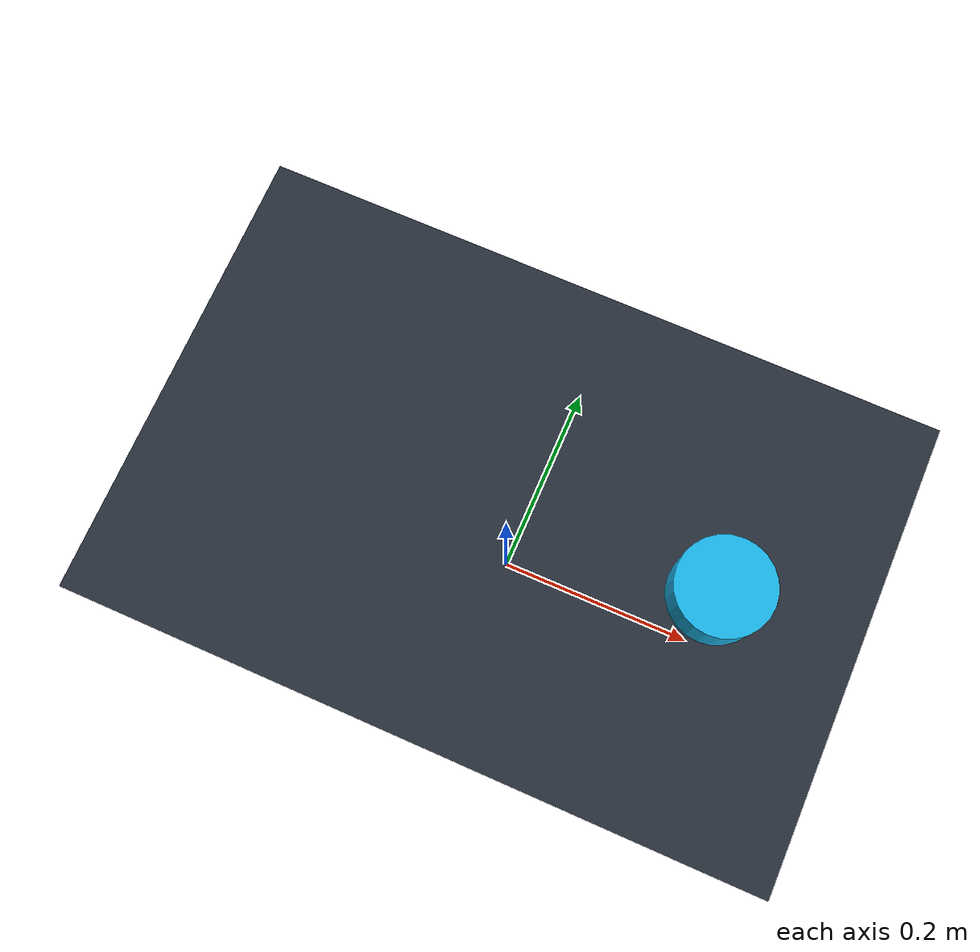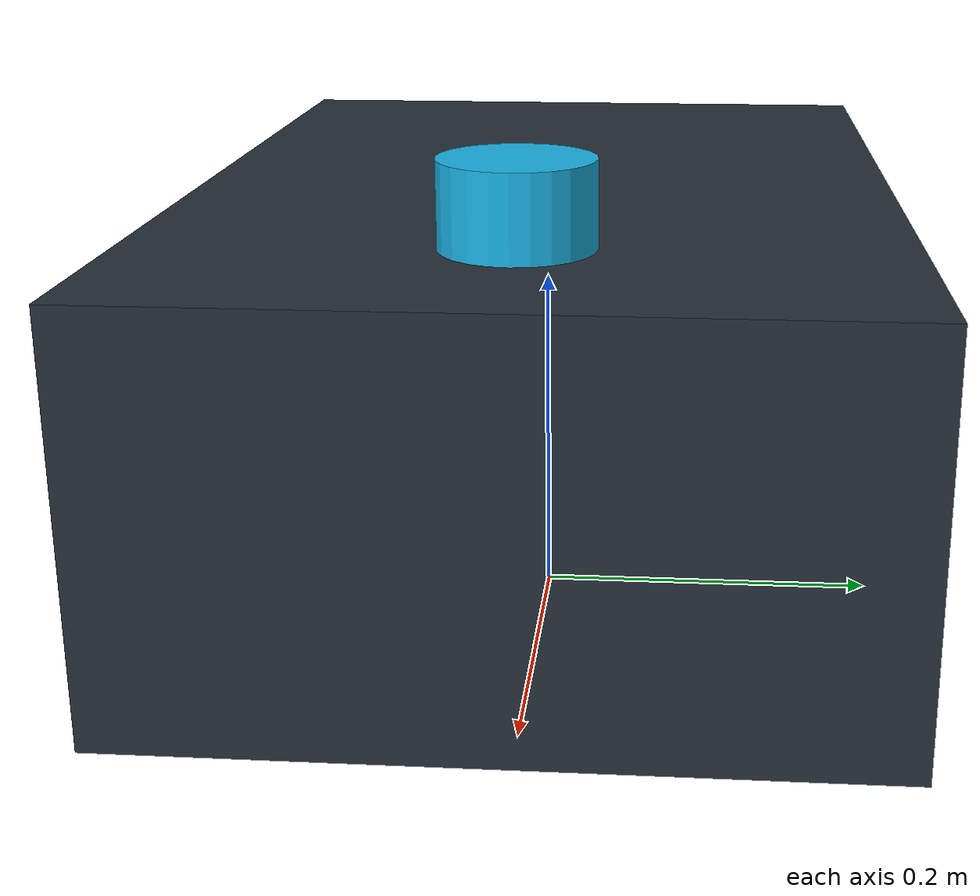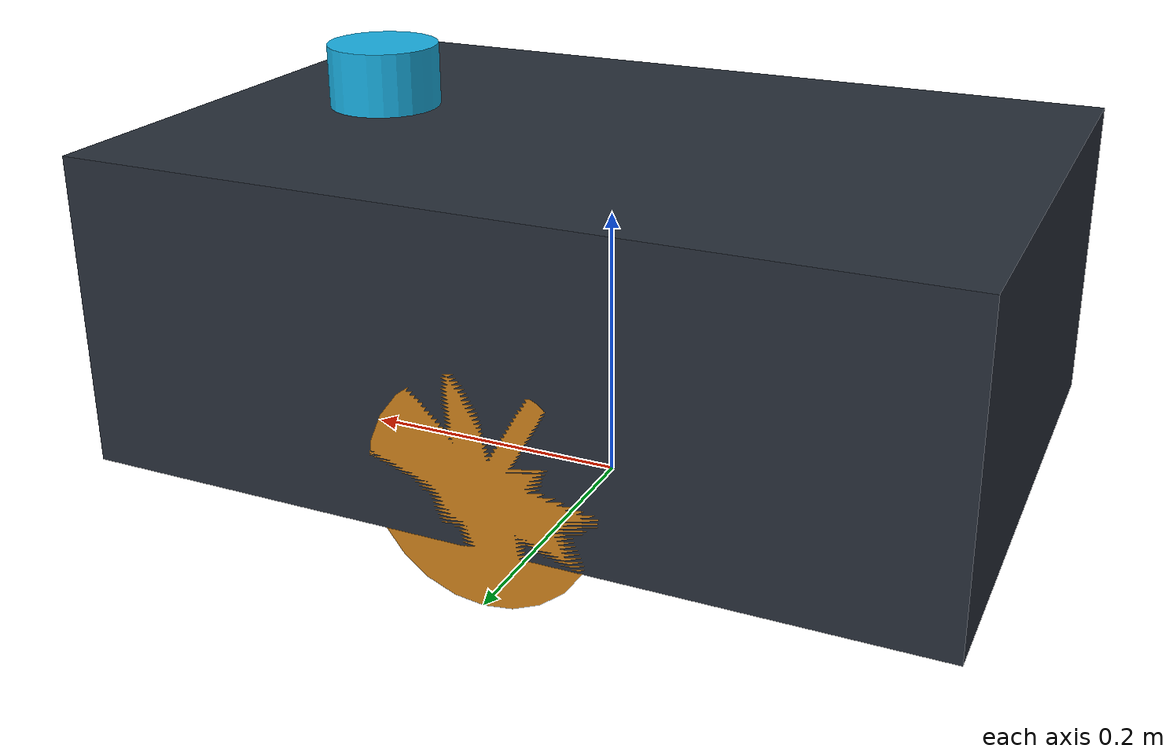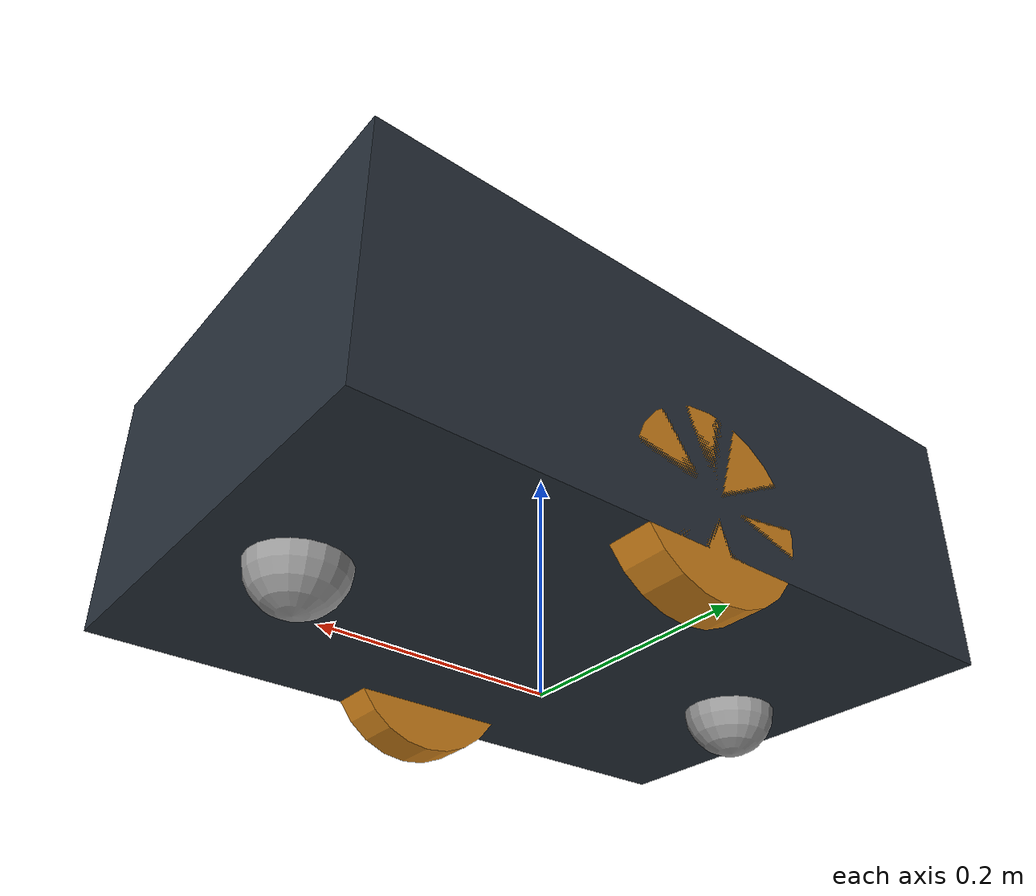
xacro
<?xml version="1.0"?>
<robot name="warehouse_amr" xmlns:xacro="http://ros.org/wiki/xacro">

  <!-- Arguments -->
  <xacro:arg name="robot_namespace" default="/" />
  <xacro:property name="ns" value="$(arg robot_namespace)" />

  <!-- Base Link / Chassis -->
  <link name="base_footprint"/>

  <joint name="base_joint" type="fixed">
    <parent link="base_footprint"/>
    <child link="base_link"/>
    <origin xyz="0 0 0.10" rpy="0 0 0"/>
  </joint>

  <link name="base_link">
    <inertial>
      <mass value="20.0"/>
      <origin xyz="0 0 0.05" rpy="0 0 0"/>
      <inertia ixx="0.3473" ixy="0.0" ixz="0.0" iyy="0.6807" iyz="0.0" izz="0.8667"/>
    </inertial>
    <collision>
      <origin xyz="0 0 0.05" rpy="0 0 0"/>
      <geometry>
        <box size="0.60 0.40 0.22"/>
      </geometry>
    </collision>
    <visual>
      <origin xyz="0 0 0.05" rpy="0 0 0"/>
      <geometry>
        <box size="0.60 0.40 0.22"/>
      </geometry>
      <material name="chassis_mat">
        <color rgba="0.15 0.18 0.22 1.0"/>
      </material>
    </visual>
  </link>

  <!-- Left Drive Wheel -->
  <link name="left_wheel">
    <inertial>
      <mass value="1.0"/>
      <origin xyz="0 0 0" rpy="0 0 0"/>
      <inertia ixx="0.001733" ixy="0" ixz="0" iyy="0.0032" iyz="0" izz="0.001733"/>
    </inertial>
    <collision>
      <origin xyz="0 0 0" rpy="1.5707963 0 0"/>
      <geometry>
        <cylinder radius="0.08" length="0.04"/>
      </geometry>
    </collision>
    <visual>
      <origin xyz="0 0 0" rpy="1.5707963 0 0"/>
      <geometry>
        <cylinder radius="0.08" length="0.04"/>
      </geometry>
      <material name="wheel_mat">
        <color rgba="0.8 0.5 0.1 1.0"/>
      </material>
    </visual>
  </link>

  <joint name="left_wheel_joint" type="continuous">
    <parent link="base_link"/>
    <child link="left_wheel"/>
    <origin xyz="0 0.18 -0.02" rpy="0 0 0"/>
    <axis xyz="0 1 0"/>
  </joint>

  <!-- Right Drive Wheel -->
  <link name="right_wheel">
    <inertial>
      <mass value="1.0"/>
      <origin xyz="0 0 0" rpy="0 0 0"/>
      <inertia ixx="0.001733" ixy="0" ixz="0" iyy="0.0032" iyz="0" izz="0.001733"/>
    </inertial>
    <collision>
      <origin xyz="0 0 0" rpy="1.5707963 0 0"/>
      <geometry>
        <cylinder radius="0.08" length="0.04"/>
      </geometry>
    </collision>
    <visual>
      <origin xyz="0 0 0" rpy="1.5707963 0 0"/>
      <geometry>
        <cylinder radius="0.08" length="0.04"/>
      </geometry>
      <material name="wheel_mat">
        <color rgba="0.8 0.5 0.1 1.0"/>
      </material>
    </visual>
  </link>

  <joint name="right_wheel_joint" type="continuous">
    <parent link="base_link"/>
    <child link="right_wheel"/>
    <origin xyz="0 -0.18 -0.02" rpy="0 0 0"/>
    <axis xyz="0 1 0"/>
  </joint>

  <!-- Front Passive Caster -->
  <link name="front_caster">
    <inertial>
      <mass value="0.5"/>
      <origin xyz="0 0 0" rpy="0 0 0"/>
      <inertia ixx="0.00032" ixy="0" ixz="0" iyy="0.00032" iyz="0" izz="0.00032"/>
    </inertial>
    <collision>
      <geometry><sphere radius="0.04"/></geometry>
    </collision>
    <visual>
      <geometry><sphere radius="0.04"/></geometry>
      <material name="caster_mat"><color rgba="0.6 0.6 0.6 1.0"/></material>
    </visual>
  </link>

  <joint name="front_caster_joint" type="fixed">
    <parent link="base_link"/>
    <child link="front_caster"/>
    <origin xyz="0.22 0 -0.06" rpy="0 0 0"/>
  </joint>

  <!-- Rear Passive Caster -->
  <link name="rear_caster">
    <inertial>
      <mass value="0.5"/>
      <origin xyz="0 0 0" rpy="0 0 0"/>
      <inertia ixx="0.00032" ixy="0" ixz="0" iyy="0.00032" iyz="0" izz="0.00032"/>
    </inertial>
    <collision>
      <geometry><sphere radius="0.04"/></geometry>
    </collision>
    <visual>
      <geometry><sphere radius="0.04"/></geometry>
      <material name="caster_mat"><color rgba="0.6 0.6 0.6 1.0"/></material>
    </visual>
  </link>

  <joint name="rear_caster_joint" type="fixed">
    <parent link="base_link"/>
    <child link="rear_caster"/>
    <origin xyz="-0.22 0 -0.06" rpy="0 0 0"/>
  </joint>

  <!-- 2D LiDAR Ray Sensor -->
  <link name="laser_link">
    <inertial>
      <mass value="0.2"/>
      <origin xyz="0 0 0" rpy="0 0 0"/>
      <inertia ixx="0.00012" ixy="0" ixz="0" iyy="0.00012" iyz="0" izz="0.00016"/>
    </inertial>
    <visual>
      <geometry><cylinder radius="0.04" length="0.05"/></geometry>
      <material name="lidar_mat"><color rgba="0.1 0.7 0.9 1.0"/></material>
    </visual>
    <collision>
      <geometry><cylinder radius="0.04" length="0.05"/></geometry>
    </collision>
  </link>

  <joint name="laser_joint" type="fixed">
    <parent link="base_link"/>
    <child link="laser_link"/>
    <origin xyz="0.18 0 0.18" rpy="0 0 0"/>
  </joint>

  <!-- Gazebo Material and Contact Properties -->
  <gazebo reference="base_link">
    <material>Gazebo/DarkGrey</material>
    <mu1>0.1</mu1>
    <mu2>0.1</mu2>
    <kp>1000000.0</kp>
    <kd>1.0</kd>
  </gazebo>

  <gazebo reference="left_wheel">
    <material>Gazebo/Orange</material>
    <mu1>1.0</mu1>
    <mu2>1.0</mu2>
    <kp>1000000.0</kp>
    <kd>100.0</kd>
    <minDepth>0.001</minDepth>
    <maxVel>0.1</maxVel>
    <fdir1>1 0 0</fdir1>
  </gazebo>

  <gazebo reference="right_wheel">
    <material>Gazebo/Orange</material>
    <mu1>1.0</mu1>
    <mu2>1.0</mu2>
    <kp>1000000.0</kp>
    <kd>100.0</kd>
    <minDepth>0.001</minDepth>
    <maxVel>0.1</maxVel>
    <fdir1>1 0 0</fdir1>
  </gazebo>

  <gazebo reference="front_caster">
    <material>Gazebo/Grey</material>
    <mu1>0.001</mu1>
    <mu2>0.001</mu2>
    <kp>1000000.0</kp>
    <kd>1.0</kd>
    <minDepth>0.001</minDepth>
  </gazebo>

  <gazebo reference="rear_caster">
    <material>Gazebo/Grey</material>
    <mu1>0.001</mu1>
    <mu2>0.001</mu2>
    <kp>1000000.0</kp>
    <kd>1.0</kd>
    <minDepth>0.001</minDepth>
  </gazebo>

  <!-- Gazebo LiDAR Plugin -->
  <gazebo reference="laser_link">
    <sensor type="ray" name="head_hokuyo_sensor">
      <pose>0 0 0 0 0 0</pose>
      <visualize>false</visualize>
      <update_rate>10</update_rate>
      <ray>
        <scan>
          <horizontal>
            <samples>360</samples>
            <resolution>1</resolution>
            <min_angle>-3.1415926</min_angle>
            <max_angle>3.1415926</max_angle>
          </horizontal>
        </scan>
        <range>
          <min>0.12</min>
          <max>12.0</max>
          <resolution>0.01</resolution>
        </range>
      </ray>
      <plugin name="gazebo_ros_laser_controller" filename="libgazebo_ros_ray_sensor.so">
        <ros>
          <namespace>${ns}</namespace>
          <remapping>~/out:=scan</remapping>
        </ros>
        <output_type>sensor_msgs/LaserScan</output_type>
        <frame_name>laser_link</frame_name>
      </plugin>
    </sensor>
  </gazebo>

  <!-- Gazebo Joint State Publisher Plugin -->
  <gazebo>
    <plugin name="joint_state_publisher" filename="libgazebo_ros_joint_state_publisher.so">
      <ros>
        <namespace>${ns}</namespace>
        <remapping>joint_states:=joint_states</remapping>
      </ros>
      <update_rate>50</update_rate>
      <joint_name>left_wheel_joint</joint_name>
      <joint_name>right_wheel_joint</joint_name>
    </plugin>
  </gazebo>

  <!-- Gazebo Differential Drive Plugin -->
  <gazebo>
    <plugin name="differential_drive_controller" filename="libgazebo_ros_diff_drive.so">
      <ros>
        <namespace>${ns}</namespace>
        <remapping>cmd_vel:=cmd_vel</remapping>
        <remapping>odom:=odom</remapping>
      </ros>
      <update_rate>50</update_rate>
      <left_joint>left_wheel_joint</left_joint>
      <right_joint>right_wheel_joint</right_joint>
      <wheel_separation>0.36</wheel_separation>
      <wheel_diameter>0.16</wheel_diameter>
      <max_wheel_torque>20</max_wheel_torque>
      <max_wheel_acceleration>1.5</max_wheel_acceleration>
      <command_topic>cmd_vel</command_topic>
      <publish_odom>true</publish_odom>
      <publish_odom_tf>true</publish_odom_tf>
      <publish_wheel_tf>false</publish_wheel_tf>
      <odometry_topic>odom</odometry_topic>
      <odometry_frame>odom</odometry_frame>
      <robot_base_frame>base_footprint</robot_base_frame>
    </plugin>
  </gazebo>

</robot>
